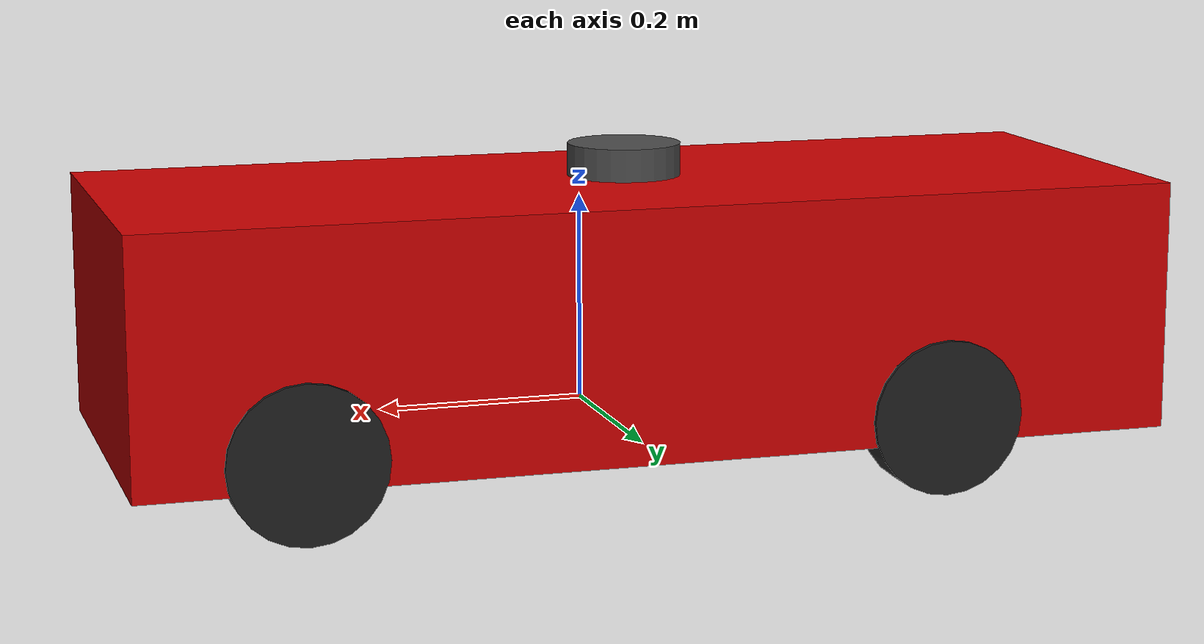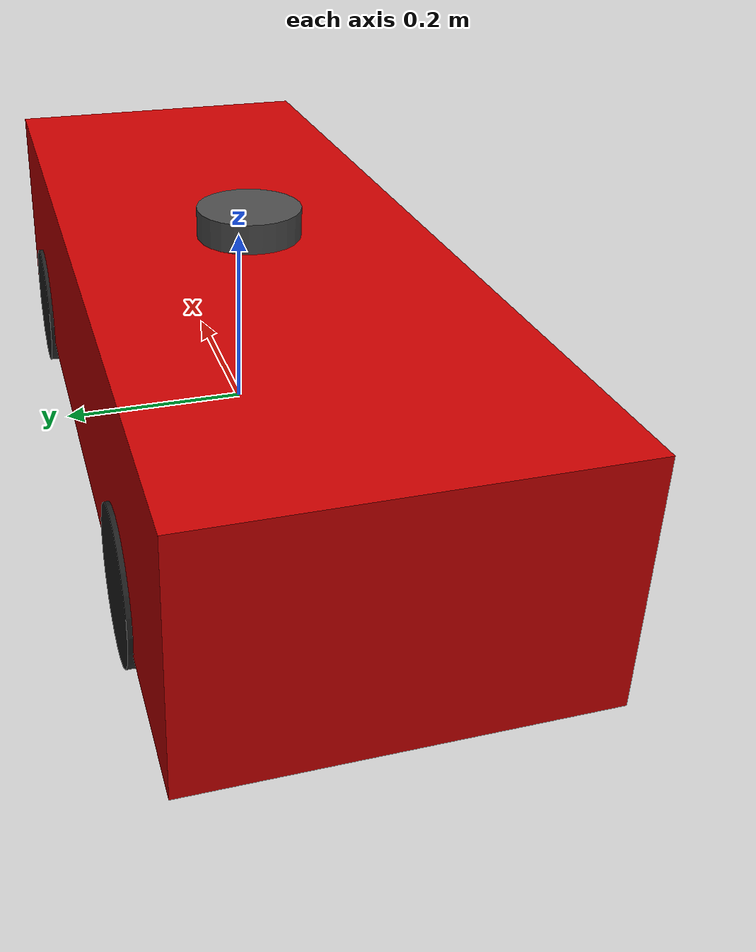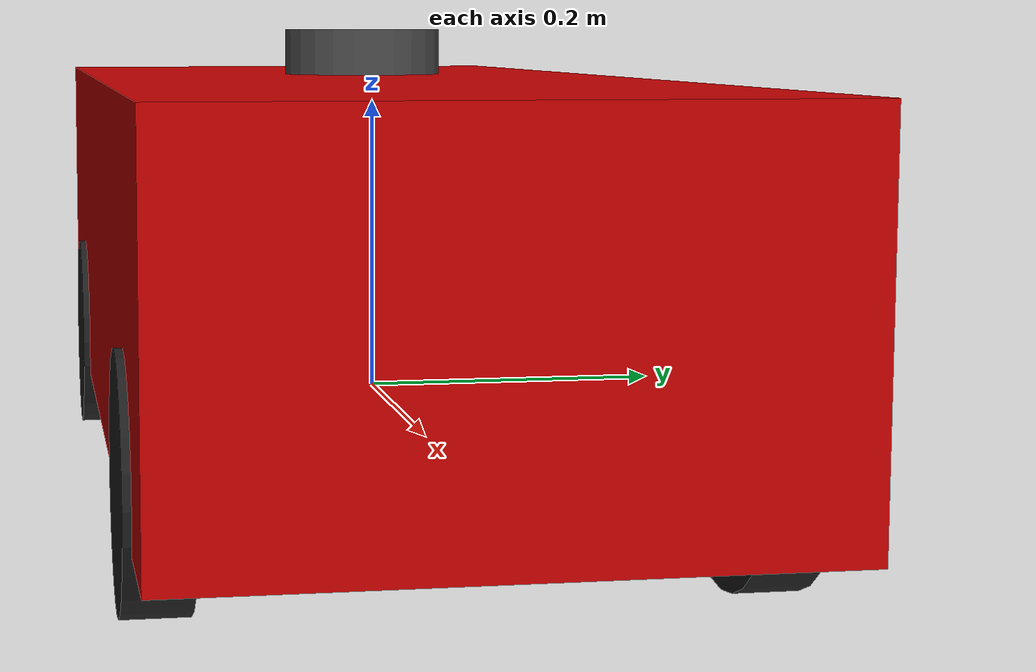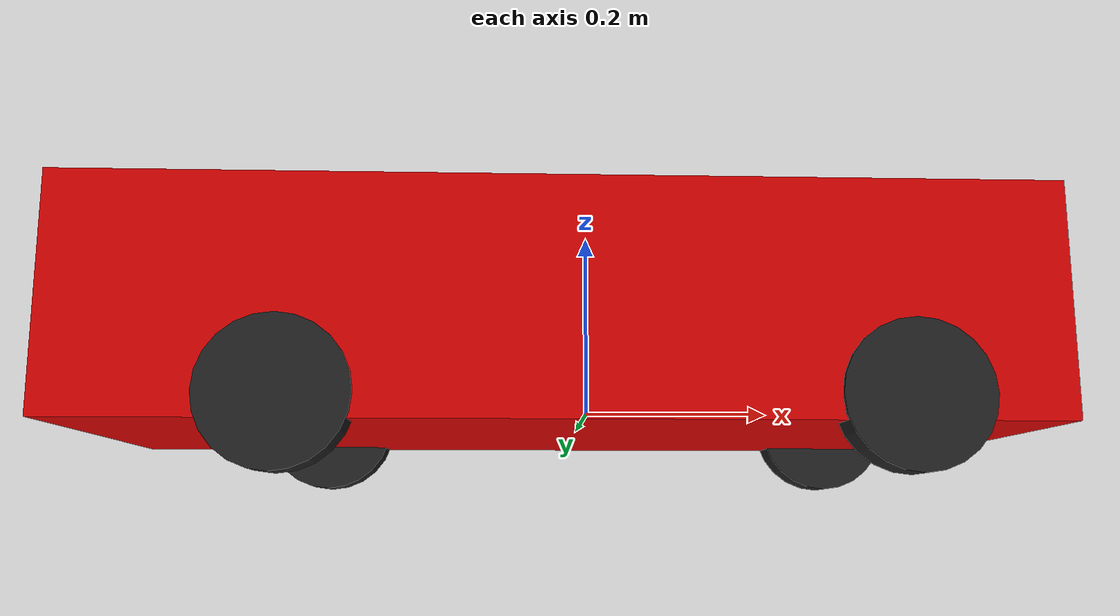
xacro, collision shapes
<?xml version="1.0"?>
<robot name="ackermann_robot" xmlns:xacro="http://ros.org/wiki/xacro">

	<xacro:include filename="$(find ackermann_simulation)/urdf/wheels.xacro"/>
	<xacro:include filename="$(find ackermann_simulation)/urdf/steering_wheels.xacro"/>
	<xacro:include filename="$(find ackermann_simulation)/urdf/lidar.xacro"/>

	<xacro:property name="M_PI_2" value="1.570796327"/>
	<xacro:property name="wheel_radius" value="0.075"/>
	<xacro:property name="wheel_height" value="0.04"/>
	<xacro:property name="wheel_mass" value="1.5"/>

	<link name="base_footprint"></link>

  <joint name="base_joint" type="fixed">
    <parent link="base_footprint"/>
    <child link="base_link"/>
    <origin xyz="0.0 0.0 ${wheel_radius}" rpy="0 0 0"/>
  </joint>

	<link name="base_link">
		<visual>
			<origin rpy="0 0 0" xyz="-0.785 -0.747 -${wheel_radius*2}"/>
			<geometry>
				<mesh filename="model://ackermann_model/meshes/base_link.stl" scale="0.01 0.01 0.01" />
			</geometry>
			<material name="red">
				<color rgba="0.8 0.0 0.0 1.0"/>
			</material>
		</visual>
		<collision>
			<origin rpy="0 0 0" xyz="-0.035 0 0.02"/>
			<geometry>
				<box size="1 0.38 0.24"/>
			</geometry>
		</collision>
		<inertial>
			<mass value="15.0"/>
			<origin xyz="0.0 0 0.0"/>
			<inertia ixx="2.3" ixy="0.0" ixz="0.0" iyy="1.0" iyz="0.0" izz="1.5"/>
		</inertial>
	</link>

	<gazebo reference="base_link">
		<selfCollide>false</selfCollide>
		<material value="Gazebo/Red"/>
    <turnGravityOff>false</turnGravityOff>
  </gazebo>

	<!-- The steering wheels -->
	<xacro:steering_wheel name="front_left" parent="base_link" limit_low="-0.7" limit_high="0.7" visual_roll="-${M_PI_2}" visual_y="-0.023" >
		<origin xyz="0.308 0.175 -${wheel_radius}" rpy="0 0 0"/>
	</xacro:steering_wheel>
	<xacro:steering_wheel name="front_right" parent="base_link" limit_low="-0.7" limit_high="0.7" visual_roll="${M_PI_2}" visual_y="0.025" >
		<origin xyz="0.308 -0.175 -${wheel_radius}" rpy="0 0 0"/>
	</xacro:steering_wheel>

	<!-- wheels -->
	<xacro:wheel name="back_left" parent="base_link" visual_roll="-${M_PI_2}" visual_y="-0.023" >
		<origin xyz="-0.308 0.175 -${wheel_radius}" rpy="0 0 0"/>
	</xacro:wheel>
	<xacro:wheel name="back_right" parent="base_link" visual_roll="${M_PI_2}" visual_y="0.025" >
		<origin xyz="-0.308 -0.175 -${wheel_radius}" rpy="0 0 0"/>
	</xacro:wheel>

	<gazebo>
		<plugin name="joint_state_publisher" filename="libgazebo_ros_joint_state_publisher.so">
      <ros>
        <remapping>~/out:=joint_states</remapping>
      </ros>
      <update_rate>30</update_rate>
      <joint_name>wheel_front_left_joint</joint_name>
      <joint_name>wheel_front_right_joint</joint_name>
      <joint_name>wheel_back_left_joint</joint_name>
      <joint_name>wheel_back_right_joint</joint_name>
      <joint_name>steering_wheel_front_left_joint</joint_name>
      <joint_name>steering_wheel_front_right_joint</joint_name>
    </plugin>
		<plugin name="gazebo_ros_ackermann_drive" filename="libgazebo_ros_ackermann_drive.so">
      <update_rate>100.0</update_rate>
      <!-- wheels -->
      <front_left_joint>wheel_front_left_joint</front_left_joint>
      <front_right_joint>wheel_front_right_joint</front_right_joint>
      <rear_left_joint>wheel_back_left_joint</rear_left_joint>
      <rear_right_joint>wheel_back_right_joint</rear_right_joint>
      <left_steering_joint>steering_wheel_front_left_joint</left_steering_joint>
      <right_steering_joint>steering_wheel_front_right_joint</right_steering_joint>
      <!-- Max absolute steer angle for tyre in radians-->
      <!-- Any cmd_vel angular z greater than this would be capped -->
      <max_steer>0.7</max_steer>
      <max_speed>40</max_speed>
      <!-- PID tuning -->
      <left_steering_pid_gain>75 0 1</left_steering_pid_gain>
      <left_steering_i_range>0 0</left_steering_i_range>
      <right_steering_pid_gain>75 0 1</right_steering_pid_gain>
      <right_steering_i_range>0 0</right_steering_i_range>
      <linear_velocity_pid_gain>50 0 1</linear_velocity_pid_gain>
      <linear_velocity_i_range>0 0</linear_velocity_i_range>
      <!-- output -->
      <publish_odom>true</publish_odom>
      <publish_odom_tf>true</publish_odom_tf>
      <publish_wheel_tf>true</publish_wheel_tf>
      <publish_distance>true</publish_distance>
      <odometry_frame>odom</odometry_frame>
      <robot_base_frame>base_footprint</robot_base_frame>
    </plugin>
	</gazebo>

	<xacro:lidar name="lidar" parent="base_link">
		<origin xyz="-0.06 0.0 0.165" rpy="0 0 0"/>
	</xacro:lidar>

</robot>

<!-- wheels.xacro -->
<robot name="wheel" xmlns:xacro="http://ros.org/wiki/xacro">
  <!-- Wheels -->
  <xacro:macro name="cylinder_inertia" params="m r h">
    <inertia  ixx="${m*(3*r*r+h*h)/12}" ixy = "0" ixz = "0"
              iyy="${m*(3*r*r+h*h)/12}" iyz = "0"
              izz="${m*r*r/2}"/>
  </xacro:macro>

  <xacro:macro name="wheel" params="name parent *origin visual_roll visual_y" >
    <link name="wheel_${name}">
      <visual>
        <origin xyz="0 ${visual_y} 0" rpy="${visual_roll} 0  0"/>
        <geometry>
					<mesh filename="model://ackermann_model/meshes/wheel.stl" scale="0.0055 0.0055 0.0055" />
        </geometry>
        <material name="black"/>
      </visual>
      <collision>
        <origin xyz="0 0 0" rpy="${M_PI_2} 0 0"/>
        <geometry>
          <cylinder length="${wheel_height}" radius="${wheel_radius}"/>
        </geometry>
      </collision>
      <inertial>
        <mass value="${wheel_mass}"/>
        <origin xyz="0 0 0"/>
        <xacro:cylinder_inertia  m="${wheel_mass}" r="${wheel_radius}" h="${wheel_height}"/>
      </inertial>
    </link>

    <gazebo reference="wheel_${name}">
      <material>Gazebo/Black</material>
      <turnGravityOff>false</turnGravityOff>
			<collision name="wheel_${name}_collision">
        <surface>
          <friction>
            <ode>
              <mu>40.0</mu>
              <mu2>40.0</mu2>
              <fdir1>1 0 0</fdir1>
              <slip1>0.0</slip1>
              <slip2>0.0</slip2>
            </ode>
          </friction>
          <contact>
            <ode>
              <soft_cfm>0</soft_cfm>
              <soft_erp>0.2</soft_erp>
              <kp>100000</kp>
              <kd>0.1</kd>
              <max_vel>20</max_vel>
              <min_depth>0.001</min_depth>
            </ode>
          </contact>
        </surface>
      </collision>
    </gazebo>

    <joint name="wheel_${name}_joint" type="revolute">
      <parent link="${parent}"/>
      <child link="wheel_${name}"/>
      <xacro:insert_block name="origin"/>
      <axis xyz="0 1 0"/>
      <limit lower="-1e+16" upper="1e+16" effort="20.0" velocity="5.0"/>
      <dynamics damping="0.4" friction="0.2"/>
    </joint>

  </xacro:macro>

</robot>

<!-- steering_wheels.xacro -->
<robot name="steering_wheel" xmlns:xacro="http://ros.org/wiki/xacro">
  <!-- Steering -->

  <xacro:macro name="steering_wheel" params="name parent *origin limit_low limit_high visual_roll visual_y">
    <link name="steering_wheel_${name}" >
			<inertial>
				<mass value="1.0"/>
				<origin xyz="0.0 0 0.0"/>
				<inertia ixx="0.001" ixy="0.0" ixz="0.0" iyy="0.001" iyz="0.0" izz="0.001"/>
			</inertial>
		</link>

		<gazebo reference="steering_wheel_${name}">
      <material>Gazebo/White</material>
      <turnGravityOff>false</turnGravityOff>
    </gazebo>

    <joint name="steering_wheel_${name}_joint" type="revolute">
      <parent link="${parent}"/>
      <child link="steering_wheel_${name}"/>
      <xacro:insert_block name="origin"/>
      <axis xyz="0 0 1"/>
      <limit lower="${limit_low}" upper="${limit_high}" effort="20.0" velocity="5.0"/>
      <dynamics damping="0.4" friction="0.5"/>
    </joint>

		<xacro:wheel name="${name}" parent="steering_wheel_${name}" visual_roll="${visual_roll}" visual_y="${visual_y}" >
			<origin xyz="0.0 0.0 0.0" rpy="0 0 0"/>
		</xacro:wheel>

  </xacro:macro>

</robot>

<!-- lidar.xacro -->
<robot name="lidar" xmlns:xacro="http://ros.org/wiki/xacro">

  <xacro:macro name="lidar" params="name parent *origin">
	  <joint name="${name}_scan_joint" type="fixed">
			<parent link="${parent}"/>
			<child link="${name}_scan"/>
      <xacro:insert_block name="origin"/>
		</joint>

		<link name="${name}_scan">
			<visual>
				<origin xyz="0 0 0.0" rpy="0 0 0"/>
				<geometry>
					<mesh filename="model://ackermann_model/meshes/lds.stl" scale="0.001 0.001 0.001"/>
				</geometry>
				<material name="grey">
					<color rgba="0.3 0.3 0.3 1.0"/>
				</material>
			</visual>
			<collision>
				<origin xyz="0.015 0 -0.0065" rpy="0 0 0"/>
				<geometry>
					<cylinder length="0.0315" radius="0.055"/>
				</geometry>
			</collision>
			<inertial>
				<mass value="0.114" />
				<origin xyz="0 0 0" />
				<inertia ixx="0.001" ixy="0.0" ixz="0.0" iyy="0.001" iyz="0.0" izz="0.001" />
			</inertial>
		</link>

		<gazebo reference="${name}_scan" >
      <material value="Gazebo/Grey" />
			<sensor name="hls_lfcd_lds" type="ray">
        <always_on>true</always_on>
        <visualize>false</visualize>
        <pose>-0.032 0 0.171 0 0 0</pose>
        <update_rate>5</update_rate>
        <ray>
          <scan>
            <horizontal>
              <samples>360</samples>
              <resolution>1.000000</resolution>
              <min_angle>0.000000</min_angle>
              <max_angle>6.280000</max_angle>
            </horizontal>
          </scan>
          <range>
            <min>0.50000</min>
            <max>5.0</max>
            <resolution>0.015000</resolution>
          </range>
          <noise>
            <type>gaussian</type>
            <mean>0.0</mean>
            <stddev>0.01</stddev>
          </noise>
        </ray>
        <plugin name="ackermann_scan" filename="libgazebo_ros_ray_sensor.so">
          <ros>
            <remapping>~/out:=scan</remapping>
          </ros>
          <output_type>sensor_msgs/LaserScan</output_type>
          <frame_name>${name}_scan</frame_name>
        </plugin>
      </sensor>
		</gazebo>

  </xacro:macro>

</robot>
